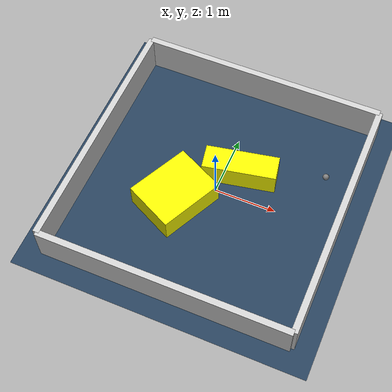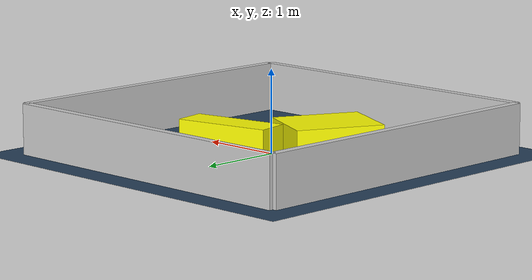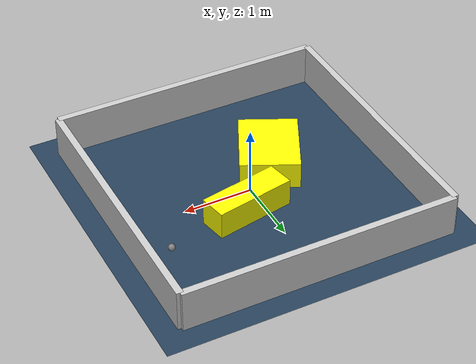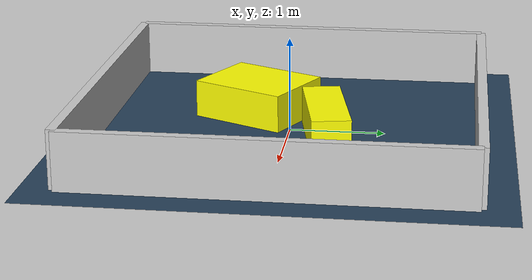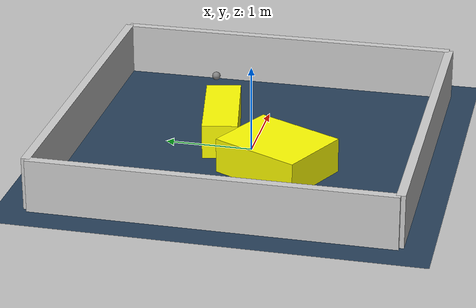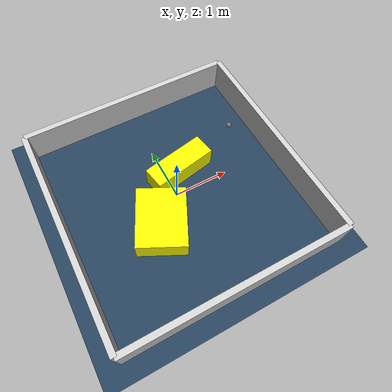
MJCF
<?xml version="1.0" ?>
<mujoco model="generated_environment">
  <option timestep="0.01" integrator="RK4" cone="elliptic"/>
  <default>
    <geom density="1"/>
  </default>
  <asset>
    <texture builtin="gradient" height="3072" rgb1="0.3 0.5 0.7" rgb2="0 0 0" type="skybox" width="512"/>
    <texture builtin="checker" height="300" mark="edge" markrgb="0.8 0.8 0.8" name="groundplane" rgb1="0.2 0.3 0.4" rgb2="0.1 0.2 0.3" type="2d" width="300"/>
    <material name="groundplane" reflectance="0.2" texrepeat="5 5" texture="groundplane" texuniform="true"/>
    <material name="robot" rgba="0.0 1.0 0.0 1"/>
  </asset>
  <worldbody>
    <light dir="0 0 -1" directional="true" pos="0 0 1.5"/>
    <geom condim="4" friction="1.0 0.005 0.001" material="groundplane" name="floor" size="0 0 0.05" type="plane"/>
    <body name="walls">
      <geom name="wall_1" condim="4" pos="-2.0 0.0 0.3" rgba="0.800000011920929 0.800000011920929 0.800000011920929 1.0" size="0.05 2.0 0.3" type="box"/>
      <geom name="wall_2" condim="4" pos="2.0 0.0 0.3" rgba="0.800000011920929 0.800000011920929 0.800000011920929 1.0" size="0.05 2.0 0.3" type="box"/>
      <geom name="wall_3" condim="4" pos="0.0 -2.0 0.3" rgba="0.800000011920929 0.800000011920929 0.800000011920929 1.0" size="2.0 0.05 0.3" type="box"/>
      <geom name="wall_4" condim="4" pos="0.0 2.0 0.3" rgba="0.800000011920929 0.800000011920929 0.800000011920929 1.0" size="2.0 0.05 0.3" type="box"/>
    </body>
    <body name="robot">
      <joint name="joint_x" type="slide" pos="0 0 0" axis="1 0 0"/>
      <joint name="joint_y" type="slide" pos="0 0 0" axis="0 1 0"/>
      <geom name="robot" type="sphere" pos="1.5557376168020998 0.7855262135833985 0.2" size="0.05" mass="5." friction="1.0 0.005 0.0001" condim="4"/>
      <site name="sensor_ball"/>
    </body>
    <body name="obstacle_1_movable">
      <geom name="obstacle_1_movable" condim="4" pos="-0.5074909243022493 -0.407495123002827 0.2" euler="0 0 244.01680674787647" friction="1.0 0.005 0.001" rgba="1 1 0 1" size="0.5308594191833083 0.42486664190256174 0.2" type="box" mass="0.1"/>
      <joint type="free"/>
    </body>
    <body name="obstacle_2_movable">
      <geom name="obstacle_2_movable" condim="4" pos="0.2603345953962608 0.40643739046275895 0.2" euler="0 0 190.99240324243456" friction="1.0 0.005 0.001" rgba="1 1 0 1" size="0.587496130747496 0.20217355187336927 0.2" type="box" mass="0.1"/>
      <joint type="free"/>
    </body>
  </worldbody>
  <actuator>
    <motor name="actuator_x" joint="joint_x" gear="1" ctrlrange="-1 1"/>
    <motor name="actuator_y" joint="joint_y" gear="1" ctrlrange="-1 1"/>
  </actuator>
</mujoco>
